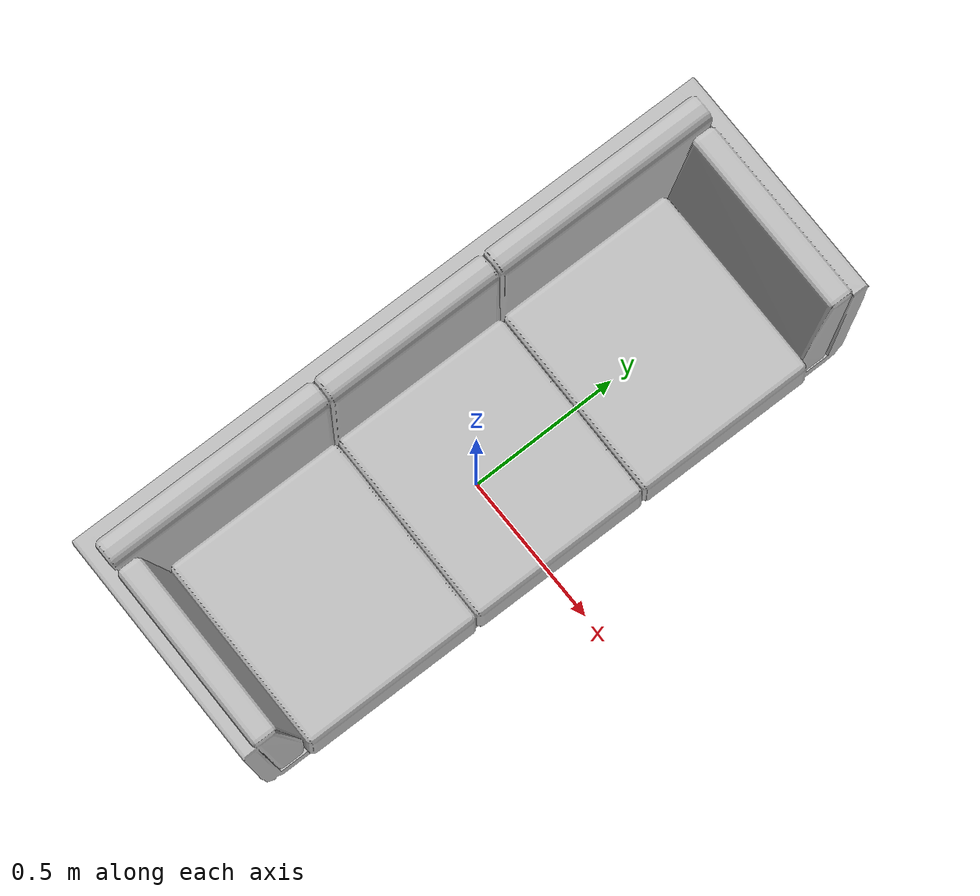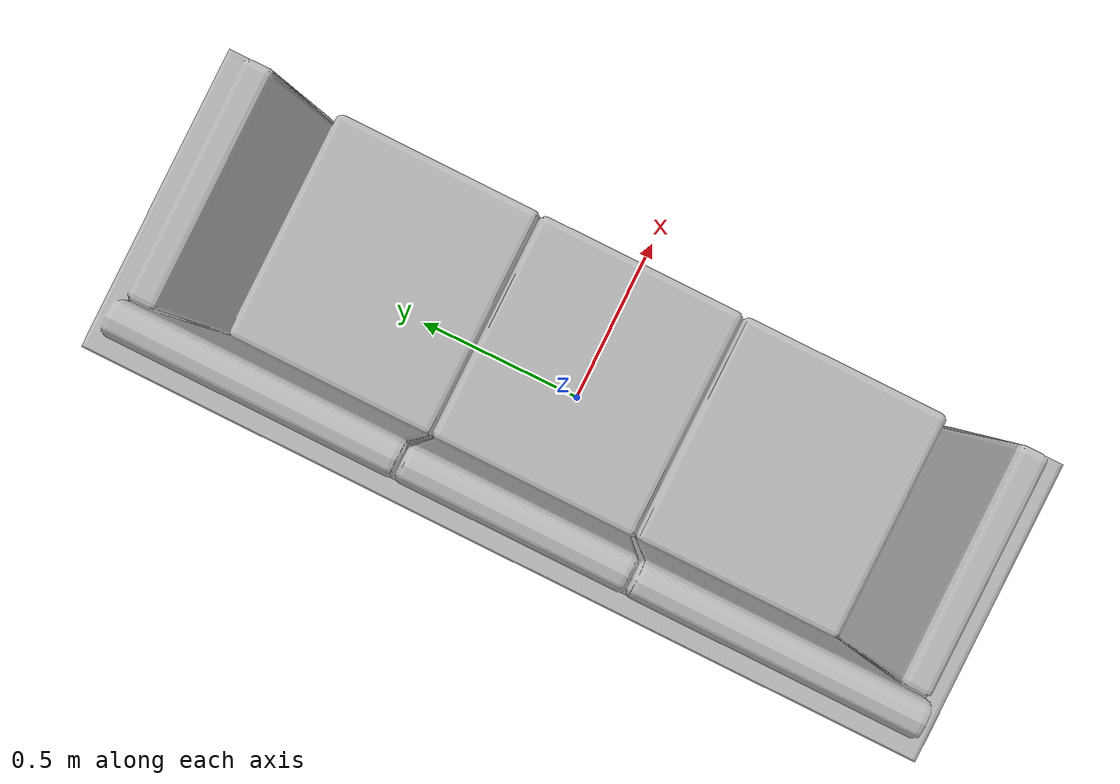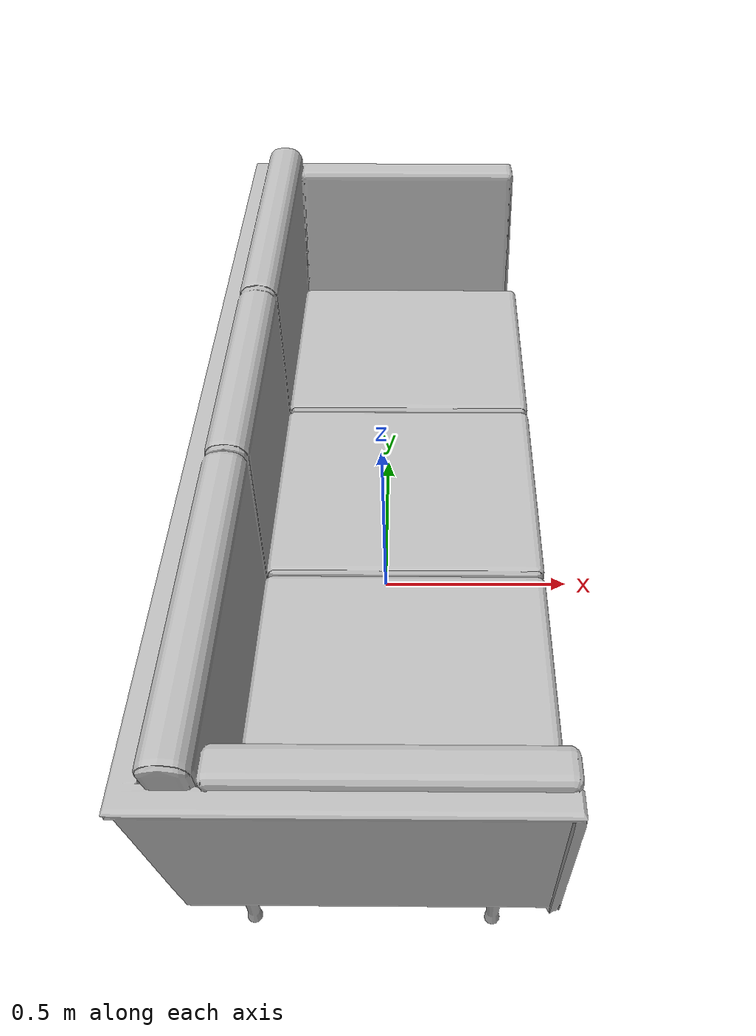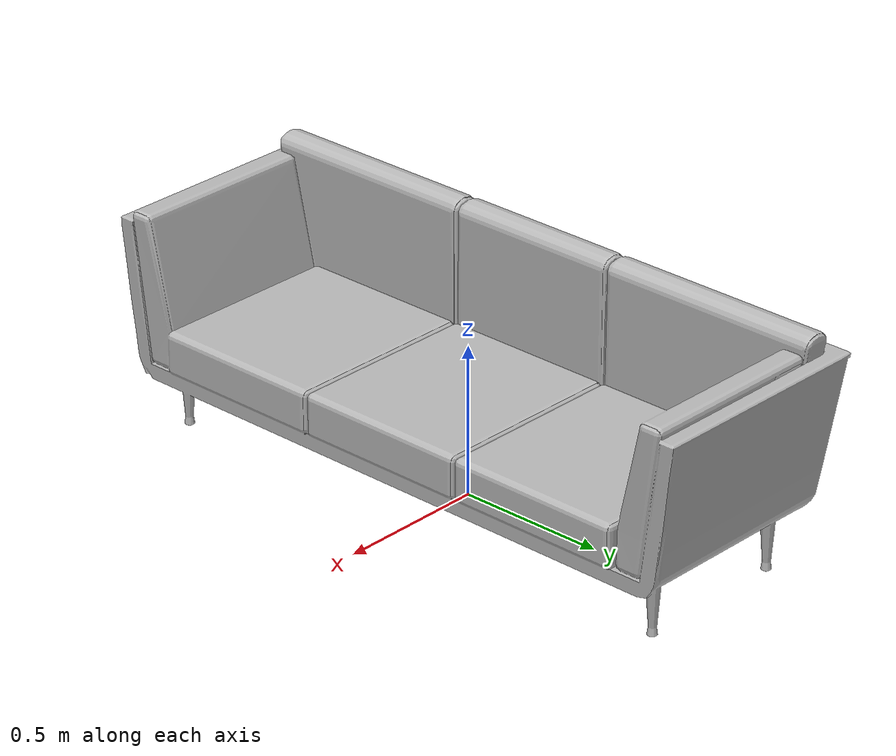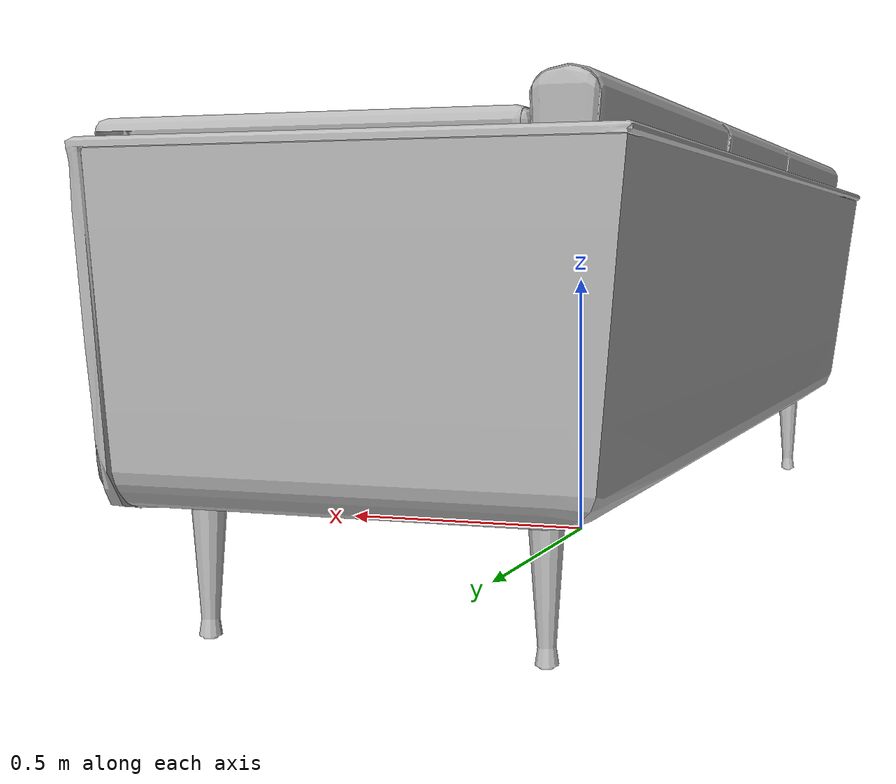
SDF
<?xml version="1.0" ?>
<sdf version="1.4">
  <model name="goetz_sofa">
    <link name="link">
      <inertial>
        <mass>20</mass>
        <inertia>
          <ixx>0.0</ixx>
          <ixy>0.0</ixy>
          <ixz>0.0</ixz>
          <iyy>0.0</iyy>
          <iyz>0.0</iyz>
          <izz>0.0</izz>
        </inertia>
      </inertial>
      <collision name="collision">
        <pose>0 0 0 0 0 0</pose>
        <geometry>
          <mesh>
            <uri>model://goetz_sofa/meshes/goetz_sofa.dae</uri>
          </mesh>
        </geometry>
      </collision>
      <visual name="visual">
        <pose>0 0 0 0 0 0</pose>
        <geometry>
          <mesh>
            <uri>model://goetz_sofa/meshes/goetz_sofa.dae</uri>
          </mesh>
        </geometry>
      </visual>
    </link>
  </model>
</sdf>
